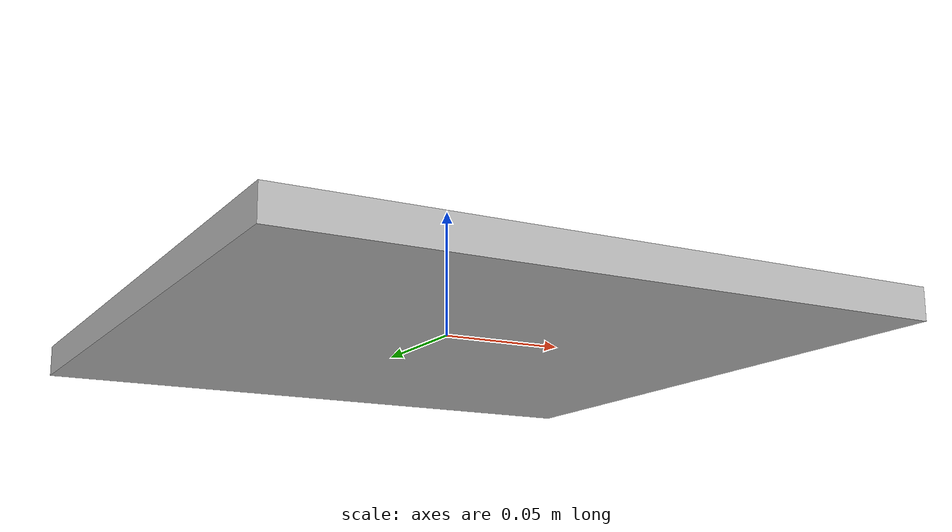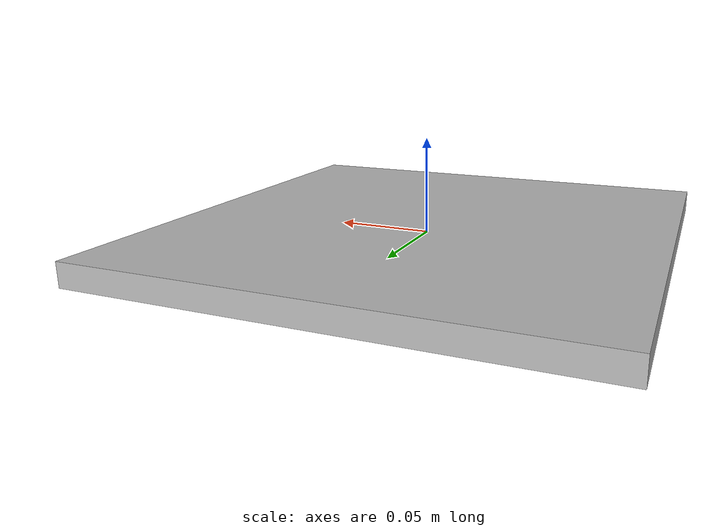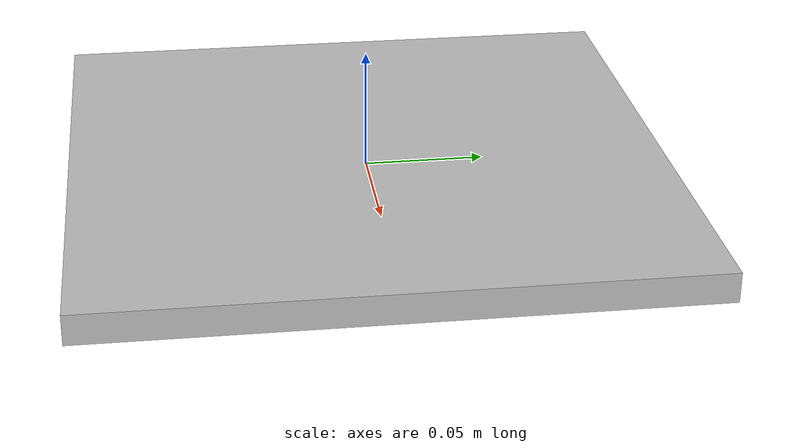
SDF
<?xml  version="1.0" ?>
<sdf version="1.5">

 <model name='aruco_sticker9'>
      <pose>0 0 0 0 0 0</pose>
      <link name='link'>
        <inertial>
          <mass>1</mass>
          <inertia>
            <ixx>0.166667</ixx>
            <ixy>0</ixy>
            <ixz>0</ixz>
            <iyy>0.166667</iyy>
            <iyz>0</iyz>
            <izz>0.0166667</izz>
          </inertia>
          <pose>0 0 0 0 -0 0</pose>
        </inertial>
        <gravity>0</gravity>
        <kinematic>true</kinematic>
        <visual name='aruco_box_mesh'>
          <geometry>
            <mesh>
                <uri>model://aruco_sticker9/model.dae</uri>
                <scale>0.125 0.125 0.00625</scale>
            </mesh>
          </geometry>
        </visual>
        <self_collide>0</self_collide>
        <enable_wind>0</enable_wind>
        <kinematic>0</kinematic>
      </link>
    </model>
</sdf>
